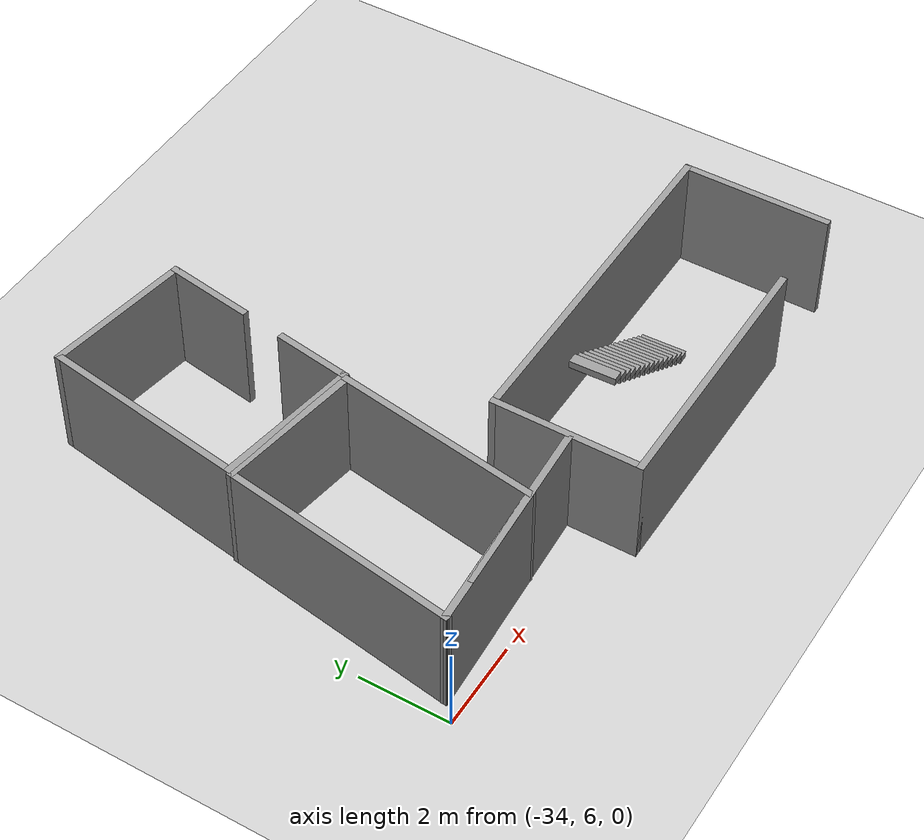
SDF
<sdf version="1.6">
 <world name="default">
  <model name="ground_plane">
   <static>1</static>
   <link name="link">
    <collision name="collision">
     <geometry><plane><normal>0 0 1</normal><size>100 100</size></plane></geometry>
     <surface>
      <contact><collide_bitmask>65535</collide_bitmask></contact>
      <friction><ode><mu>100</mu><mu2>50</mu2></ode></friction>
     </surface>
    </collision>
    <visual name="visual">
     <cast_shadows>0</cast_shadows>
     <geometry><plane><normal>0 0 1</normal><size>100 100</size></plane></geometry>
     <material>
      <script><uri>file://media/materials/scripts/gazebo.material</uri><name>Gazebo/Grey</name></script>
     </material>
    </visual>
   </link>
  </model>
  <model name="101A_2">
   <pose>-31.6597 8.67597 0 0 0 -0.150933</pose>
   <link name="Wall_21">
    <collision name="Wall_21_Collision">
     <geometry><box><size>3.40332 0.15 2.5</size></box></geometry>
     <pose>0 0 1.25 0 -0 0</pose>
    </collision>
    <visual name="Wall_21_Visual">
     <pose>0 0 1.25 0 -0 0</pose>
     <geometry><box><size>3.40332 0.15 2.5</size></box></geometry>
     <material>
      <script><uri>file://media/materials/scripts/gazebo.material</uri><name>Gazebo/Grey</name></script>
      <ambient>1 1 1 1</ambient>
     </material>
     <meta><layer>0</layer></meta>
    </visual>
    <pose>0 -2.25161 0 0 -0 0.2068</pose>
   </link>
   <link name="Wall_22">
    <collision name="Wall_22_Collision">
     <geometry><box><size>4.667 0.15 2.5</size></box></geometry>
     <pose>0 0 1.25 0 -0 0</pose>
    </collision>
    <visual name="Wall_22_Visual">
     <pose>0 0 1.25 0 -0 0</pose>
     <geometry><box><size>4.667 0.15 2.5</size></box></geometry>
     <material>
      <script><uri>file://media/materials/scripts/gazebo.material</uri><name>Gazebo/Grey</name></script>
      <ambient>1 1 1 1</ambient>
     </material>
     <meta><layer>0</layer></meta>
    </visual>
    <pose>1.592 0.340889 0 0 -0 1.5708</pose>
   </link>
   <link name="Wall_23">
    <collision name="Wall_23_Collision">
     <geometry><box><size>3.334 0.15 2.5</size></box></geometry>
     <pose>0 0 1.25 0 -0 0</pose>
    </collision>
    <visual name="Wall_23_Visual">
     <pose>0 0 1.25 0 -0 0</pose>
     <geometry><box><size>3.334 0.15 2.5</size></box></geometry>
     <material>
      <script><uri>file://media/materials/scripts/gazebo.material</uri><name>Gazebo/Grey</name></script>
      <ambient>1 1 1 1</ambient>
     </material>
     <meta><layer>0</layer></meta>
    </visual>
    <pose>0 2.59889 0 0 -0 -3.14128</pose>
   </link>
   <link name="Wall_24">
    <collision name="Wall_24_Collision">
     <geometry><box><size>5.334 0.15 2.5</size></box></geometry>
     <pose>0 0 1.25 0 -0 0</pose>
    </collision>
    <visual name="Wall_24_Visual">
     <pose>0 0 1.25 0 -0 0</pose>
     <geometry><box><size>5.334 0.15 2.5</size></box></geometry>
     <material>
      <script><uri>file://media/materials/scripts/gazebo.material</uri><name>Gazebo/Grey</name></script>
      <ambient>1 1 1 1</ambient>
     </material>
     <meta><layer>0</layer></meta>
    </visual>
    <pose>-1.592 0.006389 0 0 -0 -1.5708</pose>
   </link>
   <static>1</static>
  </model>
  <model name="Staircase_1">
   <link name="Stairs_0">
    <visual name="Stairs_0_Visual_0">
     <pose>-1.63333 -0 0.083333 0 -0 1.5708</pose>
     <geometry><box><size>1 0.233333 0.166667</size></box></geometry>
     <material>
      <script><uri>file://media/materials/scripts/gazebo.material</uri><name>Gazebo/Grey</name></script>
      <ambient>1 1 1 1</ambient>
      <shader type="pixel"/>
     </material>
     <meta><layer>0</layer></meta>
    </visual>
    <visual name="Stairs_0_Visual_2">
     <pose>-1.16667 -0 0.416667 0 -0 1.5708</pose>
     <geometry><box><size>1 0.233333 0.166667</size></box></geometry>
     <material>
      <script><uri>file://media/materials/scripts/gazebo.material</uri><name>Gazebo/Grey</name></script>
      <ambient>1 1 1 1</ambient>
      <shader type="pixel"/>
     </material>
     <meta><layer>0</layer></meta>
    </visual>
    <visual name="Stairs_0_Visual_3">
     <pose>-0.933333 -0 0.583333 0 -0 1.5708</pose>
     <geometry><box><size>1 0.233333 0.166667</size></box></geometry>
     <material>
      <script><uri>file://media/materials/scripts/gazebo.material</uri><name>Gazebo/Grey</name></script>
      <ambient>1 1 1 1</ambient>
      <shader type="pixel"/>
     </material>
     <meta><layer>0</layer></meta>
    </visual>
    <visual name="Stairs_0_Visual_4">
     <pose>-0.7 0 0.75 0 -0 1.5708</pose>
     <geometry><box><size>1 0.233333 0.166667</size></box></geometry>
     <material>
      <script><uri>file://media/materials/scripts/gazebo.material</uri><name>Gazebo/Grey</name></script>
      <ambient>1 1 1 1</ambient>
      <shader type="pixel"/>
     </material>
     <meta><layer>0</layer></meta>
    </visual>
    <visual name="Stairs_0_Visual_5">
     <pose>-0.466667 0 0.916667 0 -0 1.5708</pose>
     <geometry><box><size>1 0.233333 0.166667</size></box></geometry>
     <material>
      <script><uri>file://media/materials/scripts/gazebo.material</uri><name>Gazebo/Grey</name></script>
      <ambient>1 1 1 1</ambient>
      <shader type="pixel"/>
     </material>
     <meta><layer>0</layer></meta>
    </visual>
    <visual name="Stairs_0_Visual_6">
     <pose>-0.233333 0 1.08333 0 -0 1.5708</pose>
     <geometry><box><size>1 0.233333 0.166667</size></box></geometry>
     <material>
      <script><uri>file://media/materials/scripts/gazebo.material</uri><name>Gazebo/Grey</name></script>
      <ambient>1 1 1 1</ambient>
      <shader type="pixel"/>
     </material>
     <meta><layer>0</layer></meta>
    </visual>
    <visual name="Stairs_0_Visual_7">
     <pose>0 0 1.25 0 -0 1.5708</pose>
     <geometry><box><size>1 0.233333 0.166667</size></box></geometry>
     <material>
      <script><uri>file://media/materials/scripts/gazebo.material</uri><name>Gazebo/Grey</name></script>
      <ambient>1 1 1 1</ambient>
      <shader type="pixel"/>
     </material>
     <meta><layer>0</layer></meta>
    </visual>
    <visual name="Stairs_0_Visual_1">
     <pose>-1.4 -0 0.25 0 -0 1.5708</pose>
     <geometry><box><size>1 0.233333 0.166667</size></box></geometry>
     <material>
      <script><uri>file://media/materials/scripts/gazebo.material</uri><name>Gazebo/Grey</name></script>
      <ambient>1 1 1 1</ambient>
      <shader type="pixel"/>
     </material>
     <meta><layer>0</layer></meta>
    </visual>
    <visual name="Stairs_0_Visual_14">
     <pose>1.63333 0 2.41667 0 -0 1.5708</pose>
     <geometry><box><size>1 0.233333 0.166667</size></box></geometry>
     <material>
      <script><uri>file://media/materials/scripts/gazebo.material</uri><name>Gazebo/Grey</name></script>
      <ambient>1 1 1 1</ambient>
      <shader type="pixel"/>
     </material>
     <meta><layer>0</layer></meta>
    </visual>
    <visual name="Stairs_0_Visual_8">
     <pose>0.233333 0 1.41667 0 -0 1.5708</pose>
     <geometry><box><size>1 0.233333 0.166667</size></box></geometry>
     <material>
      <script><uri>file://media/materials/scripts/gazebo.material</uri><name>Gazebo/Grey</name></script>
      <ambient>1 1 1 1</ambient>
      <shader type="pixel"/>
     </material>
     <meta><layer>0</layer></meta>
    </visual>
    <visual name="Stairs_0_Visual_9">
     <pose>0.466667 0 1.58333 0 -0 1.5708</pose>
     <geometry><box><size>1 0.233333 0.166667</size></box></geometry>
     <material>
      <script><uri>file://media/materials/scripts/gazebo.material</uri><name>Gazebo/Grey</name></script>
      <ambient>1 1 1 1</ambient>
      <shader type="pixel"/>
     </material>
     <meta><layer>0</layer></meta>
    </visual>
    <visual name="Stairs_0_Visual_10">
     <pose>0.7 0 1.75 0 -0 1.5708</pose>
     <geometry><box><size>1 0.233333 0.166667</size></box></geometry>
     <material>
      <script><uri>file://media/materials/scripts/gazebo.material</uri><name>Gazebo/Grey</name></script>
      <ambient>1 1 1 1</ambient>
      <shader type="pixel"/>
     </material>
     <meta><layer>0</layer></meta>
    </visual>
    <visual name="Stairs_0_Visual_11">
     <pose>0.933334 0 1.91667 0 -0 1.5708</pose>
     <geometry><box><size>1 0.233333 0.166667</size></box></geometry>
     <material>
      <script><uri>file://media/materials/scripts/gazebo.material</uri><name>Gazebo/Grey</name></script>
      <ambient>1 1 1 1</ambient>
      <shader type="pixel"/>
     </material>
     <meta><layer>0</layer></meta>
    </visual>
    <visual name="Stairs_0_Visual_12">
     <pose>1.16667 0 2.08333 0 -0 1.5708</pose>
     <geometry><box><size>1 0.233333 0.166667</size></box></geometry>
     <material>
      <script><uri>file://media/materials/scripts/gazebo.material</uri><name>Gazebo/Grey</name></script>
      <ambient>1 1 1 1</ambient>
      <shader type="pixel"/>
     </material>
     <meta><layer>0</layer></meta>
    </visual>
    <visual name="Stairs_0_Visual_13">
     <pose>1.4 0 2.25 0 -0 1.5708</pose>
     <geometry><box><size>1 0.233333 0.166667</size></box></geometry>
     <material>
      <script><uri>file://media/materials/scripts/gazebo.material</uri><name>Gazebo/Grey</name></script>
      <ambient>1 1 1 1</ambient>
      <shader type="pixel"/>
     </material>
     <meta><layer>0</layer></meta>
    </visual>
    <collision name="Stairs_0_Collision_6">
     <pose>-0.233333 0 1.08333 0 -0 1.5708</pose>
     <geometry><box><size>1 0.233333 0.166667</size></box></geometry>
     <surface>
      <friction>
       <ode><mu>1</mu><mu2>1</mu2><fdir1>0 0 0</fdir1><slip1>0</slip1><slip2>0</slip2></ode>
       <torsional>
        <coefficient>1</coefficient>
        <patch_radius>0</patch_radius>
        <surface_radius>0</surface_radius>
        <use_patch_radius>1</use_patch_radius>
        <ode><slip>0</slip></ode>
       </torsional>
      </friction>
      <bounce><restitution_coefficient>0</restitution_coefficient><threshold>1e+06</threshold></bounce>
      <contact>
       <collide_without_contact>0</collide_without_contact>
       <collide_without_contact_bitmask>1</collide_without_contact_bitmask>
       <collide_bitmask>1</collide_bitmask>
       <ode>
        <soft_cfm>0</soft_cfm>
        <soft_erp>0.2</soft_erp>
        <kp>1e+13</kp>
        <kd>1</kd>
        <max_vel>0.01</max_vel>
        <min_depth>0</min_depth>
       </ode>
       <bullet>
        <split_impulse>1</split_impulse>
        <split_impulse_penetration_threshold>-0.01</split_impulse_penetration_threshold>
        <soft_cfm>0</soft_cfm>
        <soft_erp>0.2</soft_erp>
        <kp>1e+13</kp>
        <kd>1</kd>
       </bullet>
      </contact>
     </surface>
    </collision>
    <collision name="Stairs_0_Collision_7">
     <pose>0 0 1.25 0 -0 1.5708</pose>
     <geometry><box><size>1 0.233333 0.166667</size></box></geometry>
     <surface>
      <friction>
       <ode><mu>1</mu><mu2>1</mu2><fdir1>0 0 0</fdir1><slip1>0</slip1><slip2>0</slip2></ode>
       <torsional>
        <coefficient>1</coefficient>
        <patch_radius>0</patch_radius>
        <surface_radius>0</surface_radius>
        <use_patch_radius>1</use_patch_radius>
        <ode><slip>0</slip></ode>
       </torsional>
      </friction>
      <bounce><restitution_coefficient>0</restitution_coefficient><threshold>1e+06</threshold></bounce>
      <contact>
       <collide_without_contact>0</collide_without_contact>
       <collide_without_contact_bitmask>1</collide_without_contact_bitmask>
       <collide_bitmask>1</collide_bitmask>
       <ode>
        <soft_cfm>0</soft_cfm>
        <soft_erp>0.2</soft_erp>
        <kp>1e+13</kp>
        <kd>1</kd>
        <max_vel>0.01</max_vel>
        <min_depth>0</min_depth>
       </ode>
       <bullet>
        <split_impulse>1</split_impulse>
        <split_impulse_penetration_threshold>-0.01</split_impulse_penetration_threshold>
        <soft_cfm>0</soft_cfm>
        <soft_erp>0.2</soft_erp>
        <kp>1e+13</kp>
        <kd>1</kd>
       </bullet>
      </contact>
     </surface>
    </collision>
    <collision name="Stairs_0_Collision_8">
     <pose>0.233333 0 1.41667 0 -0 1.5708</pose>
     <geometry><box><size>1 0.233333 0.166667</size></box></geometry>
     <surface>
      <friction>
       <ode><mu>1</mu><mu2>1</mu2><fdir1>0 0 0</fdir1><slip1>0</slip1><slip2>0</slip2></ode>
       <torsional>
        <coefficient>1</coefficient>
        <patch_radius>0</patch_radius>
        <surface_radius>0</surface_radius>
        <use_patch_radius>1</use_patch_radius>
        <ode><slip>0</slip></ode>
       </torsional>
      </friction>
      <bounce><restitution_coefficient>0</restitution_coefficient><threshold>1e+06</threshold></bounce>
      <contact>
       <collide_without_contact>0</collide_without_contact>
       <collide_without_contact_bitmask>1</collide_without_contact_bitmask>
       <collide_bitmask>1</collide_bitmask>
       <ode>
        <soft_cfm>0</soft_cfm>
        <soft_erp>0.2</soft_erp>
        <kp>1e+13</kp>
        <kd>1</kd>
        <max_vel>0.01</max_vel>
        <min_depth>0</min_depth>
       </ode>
       <bullet>
        <split_impulse>1</split_impulse>
        <split_impulse_penetration_threshold>-0.01</split_impulse_penetration_threshold>
        <soft_cfm>0</soft_cfm>
        <soft_erp>0.2</soft_erp>
        <kp>1e+13</kp>
        <kd>1</kd>
       </bullet>
      </contact>
     </surface>
    </collision>
    <collision name="Stairs_0_Collision_9">
     <pose>0.466667 0 1.58333 0 -0 1.5708</pose>
     <geometry><box><size>1 0.233333 0.166667</size></box></geometry>
     <surface>
      <friction>
       <ode><mu>1</mu><mu2>1</mu2><fdir1>0 0 0</fdir1><slip1>0</slip1><slip2>0</slip2></ode>
       <torsional>
        <coefficient>1</coefficient>
        <patch_radius>0</patch_radius>
        <surface_radius>0</surface_radius>
        <use_patch_radius>1</use_patch_radius>
        <ode><slip>0</slip></ode>
       </torsional>
      </friction>
      <bounce><restitution_coefficient>0</restitution_coefficient><threshold>1e+06</threshold></bounce>
      <contact>
       <collide_without_contact>0</collide_without_contact>
       <collide_without_contact_bitmask>1</collide_without_contact_bitmask>
       <collide_bitmask>1</collide_bitmask>
       <ode>
        <soft_cfm>0</soft_cfm>
        <soft_erp>0.2</soft_erp>
        <kp>1e+13</kp>
        <kd>1</kd>
        <max_vel>0.01</max_vel>
        <min_depth>0</min_depth>
       </ode>
       <bullet>
        <split_impulse>1</split_impulse>
        <split_impulse_penetration_threshold>-0.01</split_impulse_penetration_threshold>
        <soft_cfm>0</soft_cfm>
        <soft_erp>0.2</soft_erp>
        <kp>1e+13</kp>
        <kd>1</kd>
       </bullet>
      </contact>
     </surface>
    </collision>
    <collision name="Stairs_0_Collision_10">
     <pose>0.7 0 1.75 0 -0 1.5708</pose>
     <geometry><box><size>1 0.233333 0.166667</size></box></geometry>
     <surface>
      <friction>
       <ode><mu>1</mu><mu2>1</mu2><fdir1>0 0 0</fdir1><slip1>0</slip1><slip2>0</slip2></ode>
       <torsional>
        <coefficient>1</coefficient>
        <patch_radius>0</patch_radius>
        <surface_radius>0</surface_radius>
        <use_patch_radius>1</use_patch_radius>
        <ode><slip>0</slip></ode>
       </torsional>
      </friction>
      <bounce><restitution_coefficient>0</restitution_coefficient><threshold>1e+06</threshold></bounce>
      <contact>
       <collide_without_contact>0</collide_without_contact>
       <collide_without_contact_bitmask>1</collide_without_contact_bitmask>
       <collide_bitmask>1</collide_bitmask>
       <ode>
        <soft_cfm>0</soft_cfm>
        <soft_erp>0.2</soft_erp>
        <kp>1e+13</kp>
        <kd>1</kd>
        <max_vel>0.01</max_vel>
        <min_depth>0</min_depth>
       </ode>
       <bullet>
        <split_impulse>1</split_impulse>
        <split_impulse_penetration_threshold>-0.01</split_impulse_penetration_threshold>
        <soft_cfm>0</soft_cfm>
        <soft_erp>0.2</soft_erp>
        <kp>1e+13</kp>
        <kd>1</kd>
       </bullet>
      </contact>
     </surface>
    </collision>
    <collision name="Stairs_0_Collision_11">
     <pose>0.933334 0 1.91667 0 -0 1.5708</pose>
     <geometry><box><size>1 0.233333 0.166667</size></box></geometry>
     <surface>
      <friction>
       <ode><mu>1</mu><mu2>1</mu2><fdir1>0 0 0</fdir1><slip1>0</slip1><slip2>0</slip2></ode>
       <torsional>
        <coefficient>1</coefficient>
        <patch_radius>0</patch_radius>
        <surface_radius>0</surface_radius>
        <use_patch_radius>1</use_patch_radius>
        <ode><slip>0</slip></ode>
       </torsional>
      </friction>
      <bounce><restitution_coefficient>0</restitution_coefficient><threshold>1e+06</threshold></bounce>
      <contact>
       <collide_without_contact>0</collide_without_contact>
       <collide_without_contact_bitmask>1</collide_without_contact_bitmask>
       <collide_bitmask>1</collide_bitmask>
       <ode>
        <soft_cfm>0</soft_cfm>
        <soft_erp>0.2</soft_erp>
        <kp>1e+13</kp>
        <kd>1</kd>
        <max_vel>0.01</max_vel>
        <min_depth>0</min_depth>
       </ode>
       <bullet>
        <split_impulse>1</split_impulse>
        <split_impulse_penetration_threshold>-0.01</split_impulse_penetration_threshold>
        <soft_cfm>0</soft_cfm>
        <soft_erp>0.2</soft_erp>
        <kp>1e+13</kp>
        <kd>1</kd>
       </bullet>
      </contact>
     </surface>
    </collision>
    <collision name="Stairs_0_Collision_12">
     <pose>1.16667 0 2.08333 0 -0 1.5708</pose>
     <geometry><box><size>1 0.233333 0.166667</size></box></geometry>
     <surface>
      <friction>
       <ode><mu>1</mu><mu2>1</mu2><fdir1>0 0 0</fdir1><slip1>0</slip1><slip2>0</slip2></ode>
       <torsional>
        <coefficient>1</coefficient>
        <patch_radius>0</patch_radius>
        <surface_radius>0</surface_radius>
        <use_patch_radius>1</use_patch_radius>
        <ode><slip>0</slip></ode>
       </torsional>
      </friction>
      <bounce><restitution_coefficient>0</restitution_coefficient><threshold>1e+06</threshold></bounce>
      <contact>
       <collide_without_contact>0</collide_without_contact>
       <collide_without_contact_bitmask>1</collide_without_contact_bitmask>
       <collide_bitmask>1</collide_bitmask>
       <ode>
        <soft_cfm>0</soft_cfm>
        <soft_erp>0.2</soft_erp>
        <kp>1e+13</kp>
        <kd>1</kd>
        <max_vel>0.01</max_vel>
        <min_depth>0</min_depth>
       </ode>
       <bullet>
        <split_impulse>1</split_impulse>
        <split_impulse_penetration_threshold>-0.01</split_impulse_penetration_threshold>
        <soft_cfm>0</soft_cfm>
        <soft_erp>0.2</soft_erp>
        <kp>1e+13</kp>
        <kd>1</kd>
       </bullet>
      </contact>
     </surface>
    </collision>
    <collision name="Stairs_0_Collision_0">
     <pose>-1.63333 0 0.083333 0 -0 1.5708</pose>
     <geometry><box><size>1 0.233333 0.166667</size></box></geometry>
     <surface>
      <friction>
       <ode><mu>1</mu><mu2>1</mu2><fdir1>0 0 0</fdir1><slip1>0</slip1><slip2>0</slip2></ode>
       <torsional>
        <coefficient>1</coefficient>
        <patch_radius>0</patch_radius>
        <surface_radius>0</surface_radius>
        <use_patch_radius>1</use_patch_radius>
        <ode><slip>0</slip></ode>
       </torsional>
      </friction>
      <bounce><restitution_coefficient>0</restitution_coefficient><threshold>1e+06</threshold></bounce>
      <contact>
       <collide_without_contact>0</collide_without_contact>
       <collide_without_contact_bitmask>1</collide_without_contact_bitmask>
       <collide_bitmask>1</collide_bitmask>
       <ode>
        <soft_cfm>0</soft_cfm>
        <soft_erp>0.2</soft_erp>
        <kp>1e+13</kp>
        <kd>1</kd>
        <max_vel>0.01</max_vel>
        <min_depth>0</min_depth>
       </ode>
       <bullet>
        <split_impulse>1</split_impulse>
        <split_impulse_penetration_threshold>-0.01</split_impulse_penetration_threshold>
        <soft_cfm>0</soft_cfm>
        <soft_erp>0.2</soft_erp>
        <kp>1e+13</kp>
        <kd>1</kd>
       </bullet>
      </contact>
     </surface>
    </collision>
    <collision name="Stairs_0_Collision_1">
     <pose>-1.4 0 0.25 0 -0 1.5708</pose>
     <geometry><box><size>1 0.233333 0.166667</size></box></geometry>
     <surface>
      <friction>
       <ode><mu>1</mu><mu2>1</mu2><fdir1>0 0 0</fdir1><slip1>0</slip1><slip2>0</slip2></ode>
       <torsional>
        <coefficient>1</coefficient>
        <patch_radius>0</patch_radius>
        <surface_radius>0</surface_radius>
        <use_patch_radius>1</use_patch_radius>
        <ode><slip>0</slip></ode>
       </torsional>
      </friction>
      <bounce><restitution_coefficient>0</restitution_coefficient><threshold>1e+06</threshold></bounce>
      <contact>
       <collide_without_contact>0</collide_without_contact>
       <collide_without_contact_bitmask>1</collide_without_contact_bitmask>
       <collide_bitmask>1</collide_bitmask>
       <ode>
        <soft_cfm>0</soft_cfm>
        <soft_erp>0.2</soft_erp>
        <kp>1e+13</kp>
        <kd>1</kd>
        <max_vel>0.01</max_vel>
        <min_depth>0</min_depth>
       </ode>
       <bullet>
        <split_impulse>1</split_impulse>
        <split_impulse_penetration_threshold>-0.01</split_impulse_penetration_threshold>
        <soft_cfm>0</soft_cfm>
        <soft_erp>0.2</soft_erp>
        <kp>1e+13</kp>
        <kd>1</kd>
       </bullet>
      </contact>
     </surface>
    </collision>
    <collision name="Stairs_0_Collision_2">
     <pose>-1.16667 0 0.416667 0 -0 1.5708</pose>
     <geometry><box><size>1 0.233333 0.166667</size></box></geometry>
     <surface>
      <friction>
       <ode><mu>1</mu><mu2>1</mu2><fdir1>0 0 0</fdir1><slip1>0</slip1><slip2>0</slip2></ode>
       <torsional>
        <coefficient>1</coefficient>
        <patch_radius>0</patch_radius>
        <surface_radius>0</surface_radius>
        <use_patch_radius>1</use_patch_radius>
        <ode><slip>0</slip></ode>
       </torsional>
      </friction>
      <bounce><restitution_coefficient>0</restitution_coefficient><threshold>1e+06</threshold></bounce>
      <contact>
       <collide_without_contact>0</collide_without_contact>
       <collide_without_contact_bitmask>1</collide_without_contact_bitmask>
       <collide_bitmask>1</collide_bitmask>
       <ode>
        <soft_cfm>0</soft_cfm>
        <soft_erp>0.2</soft_erp>
        <kp>1e+13</kp>
        <kd>1</kd>
        <max_vel>0.01</max_vel>
        <min_depth>0</min_depth>
       </ode>
       <bullet>
        <split_impulse>1</split_impulse>
        <split_impulse_penetration_threshold>-0.01</split_impulse_penetration_threshold>
        <soft_cfm>0</soft_cfm>
        <soft_erp>0.2</soft_erp>
        <kp>1e+13</kp>
        <kd>1</kd>
       </bullet>
      </contact>
     </surface>
    </collision>
    <collision name="Stairs_0_Collision_3">
     <pose>-0.933333 0 0.583333 0 -0 1.5708</pose>
     <geometry><box><size>1 0.233333 0.166667</size></box></geometry>
     <surface>
      <friction>
       <ode><mu>1</mu><mu2>1</mu2><fdir1>0 0 0</fdir1><slip1>0</slip1><slip2>0</slip2></ode>
       <torsional>
        <coefficient>1</coefficient>
        <patch_radius>0</patch_radius>
        <surface_radius>0</surface_radius>
        <use_patch_radius>1</use_patch_radius>
        <ode><slip>0</slip></ode>
       </torsional>
      </friction>
      <bounce><restitution_coefficient>0</restitution_coefficient><threshold>1e+06</threshold></bounce>
      <contact>
       <collide_without_contact>0</collide_without_contact>
       <collide_without_contact_bitmask>1</collide_without_contact_bitmask>
       <collide_bitmask>1</collide_bitmask>
       <ode>
        <soft_cfm>0</soft_cfm>
        <soft_erp>0.2</soft_erp>
        <kp>1e+13</kp>
        <kd>1</kd>
        <max_vel>0.01</max_vel>
        <min_depth>0</min_depth>
       </ode>
       <bullet>
        <split_impulse>1</split_impulse>
        <split_impulse_penetration_threshold>-0.01</split_impulse_penetration_threshold>
        <soft_cfm>0</soft_cfm>
        <soft_erp>0.2</soft_erp>
        <kp>1e+13</kp>
        <kd>1</kd>
       </bullet>
      </contact>
     </surface>
    </collision>
    <collision name="Stairs_0_Collision_4">
     <pose>-0.7 0 0.75 0 -0 1.5708</pose>
     <geometry><box><size>1 0.233333 0.166667</size></box></geometry>
     <surface>
      <friction>
       <ode><mu>1</mu><mu2>1</mu2><fdir1>0 0 0</fdir1><slip1>0</slip1><slip2>0</slip2></ode>
       <torsional>
        <coefficient>1</coefficient>
        <patch_radius>0</patch_radius>
        <surface_radius>0</surface_radius>
        <use_patch_radius>1</use_patch_radius>
        <ode><slip>0</slip></ode>
       </torsional>
      </friction>
      <bounce><restitution_coefficient>0</restitution_coefficient><threshold>1e+06</threshold></bounce>
      <contact>
       <collide_without_contact>0</collide_without_contact>
       <collide_without_contact_bitmask>1</collide_without_contact_bitmask>
       <collide_bitmask>1</collide_bitmask>
       <ode>
        <soft_cfm>0</soft_cfm>
        <soft_erp>0.2</soft_erp>
        <kp>1e+13</kp>
        <kd>1</kd>
        <max_vel>0.01</max_vel>
        <min_depth>0</min_depth>
       </ode>
       <bullet>
        <split_impulse>1</split_impulse>
        <split_impulse_penetration_threshold>-0.01</split_impulse_penetration_threshold>
        <soft_cfm>0</soft_cfm>
        <soft_erp>0.2</soft_erp>
        <kp>1e+13</kp>
        <kd>1</kd>
       </bullet>
      </contact>
     </surface>
    </collision>
    <collision name="Stairs_0_Collision_5">
     <pose>-0.466667 0 0.916667 0 -0 1.5708</pose>
     <geometry><box><size>1 0.233333 0.166667</size></box></geometry>
     <surface>
      <friction>
       <ode><mu>1</mu><mu2>1</mu2><fdir1>0 0 0</fdir1><slip1>0</slip1><slip2>0</slip2></ode>
       <torsional>
        <coefficient>1</coefficient>
        <patch_radius>0</patch_radius>
        <surface_radius>0</surface_radius>
        <use_patch_radius>1</use_patch_radius>
        <ode><slip>0</slip></ode>
       </torsional>
      </friction>
      <bounce><restitution_coefficient>0</restitution_coefficient><threshold>1e+06</threshold></bounce>
      <contact>
       <collide_without_contact>0</collide_without_contact>
       <collide_without_contact_bitmask>1</collide_without_contact_bitmask>
       <collide_bitmask>1</collide_bitmask>
       <ode>
        <soft_cfm>0</soft_cfm>
        <soft_erp>0.2</soft_erp>
        <kp>1e+13</kp>
        <kd>1</kd>
        <max_vel>0.01</max_vel>
        <min_depth>0</min_depth>
       </ode>
       <bullet>
        <split_impulse>1</split_impulse>
        <split_impulse_penetration_threshold>-0.01</split_impulse_penetration_threshold>
        <soft_cfm>0</soft_cfm>
        <soft_erp>0.2</soft_erp>
        <kp>1e+13</kp>
        <kd>1</kd>
       </bullet>
      </contact>
     </surface>
    </collision>
    <collision name="Stairs_0_Collision_13">
     <pose>1.4 0 2.25 0 -0 1.5708</pose>
     <geometry><box><size>1 0.233333 0.166667</size></box></geometry>
     <surface>
      <friction>
       <ode><mu>1</mu><mu2>1</mu2><fdir1>0 0 0</fdir1><slip1>0</slip1><slip2>0</slip2></ode>
       <torsional>
        <coefficient>1</coefficient>
        <patch_radius>0</patch_radius>
        <surface_radius>0</surface_radius>
        <use_patch_radius>1</use_patch_radius>
        <ode><slip>0</slip></ode>
       </torsional>
      </friction>
      <bounce><restitution_coefficient>0</restitution_coefficient><threshold>1e+06</threshold></bounce>
      <contact>
       <collide_without_contact>0</collide_without_contact>
       <collide_without_contact_bitmask>1</collide_without_contact_bitmask>
       <collide_bitmask>1</collide_bitmask>
       <ode>
        <soft_cfm>0</soft_cfm>
        <soft_erp>0.2</soft_erp>
        <kp>1e+13</kp>
        <kd>1</kd>
        <max_vel>0.01</max_vel>
        <min_depth>0</min_depth>
       </ode>
       <bullet>
        <split_impulse>1</split_impulse>
        <split_impulse_penetration_threshold>-0.01</split_impulse_penetration_threshold>
        <soft_cfm>0</soft_cfm>
        <soft_erp>0.2</soft_erp>
        <kp>1e+13</kp>
        <kd>1</kd>
       </bullet>
      </contact>
     </surface>
    </collision>
    <collision name="Stairs_0_Collision_14">
     <pose>1.63333 0 2.41667 0 -0 1.5708</pose>
     <geometry><box><size>1 0.233333 0.166667</size></box></geometry>
     <surface>
      <friction>
       <ode><mu>1</mu><mu2>1</mu2><fdir1>0 0 0</fdir1><slip1>0</slip1><slip2>0</slip2></ode>
       <torsional>
        <coefficient>1</coefficient>
        <patch_radius>0</patch_radius>
        <surface_radius>0</surface_radius>
        <use_patch_radius>1</use_patch_radius>
        <ode><slip>0</slip></ode>
       </torsional>
      </friction>
      <bounce><restitution_coefficient>0</restitution_coefficient><threshold>1e+06</threshold></bounce>
      <contact>
       <collide_without_contact>0</collide_without_contact>
       <collide_without_contact_bitmask>1</collide_without_contact_bitmask>
       <collide_bitmask>1</collide_bitmask>
       <ode>
        <soft_cfm>0</soft_cfm>
        <soft_erp>0.2</soft_erp>
        <kp>1e+13</kp>
        <kd>1</kd>
        <max_vel>0.01</max_vel>
        <min_depth>0</min_depth>
       </ode>
       <bullet>
        <split_impulse>1</split_impulse>
        <split_impulse_penetration_threshold>-0.01</split_impulse_penetration_threshold>
        <soft_cfm>0</soft_cfm>
        <soft_erp>0.2</soft_erp>
        <kp>1e+13</kp>
        <kd>1</kd>
       </bullet>
      </contact>
     </surface>
    </collision>
   </link>
   <static>1</static>
   <pose>-25.2901 7.17612 0 0 0 -3.10259</pose>
  </model>
  <model name="197A">
   <link name="Wall_33">
    <pose>3.925 0 0 0 -0 1.5708</pose>
    <visual name="Wall_33_Visual">
     <pose>0 0 1.25 0 -0 0</pose>
     <geometry><box><size>3.336 0.15 2.5</size></box></geometry>
     <material>
      <script><uri>file://media/materials/scripts/gazebo.material</uri><name>Gazebo/Grey</name></script>
      <ambient>1 1 1 1</ambient>
      <shader type="pixel"/>
     </material>
     <meta><layer>0</layer></meta>
    </visual>
    <collision name="Wall_33_Collision">
     <pose>0 0 1.25 0 -0 0</pose>
     <geometry><box><size>3.336 0.15 2.5</size></box></geometry>
     <surface>
      <friction>
       <ode><mu>1</mu><mu2>1</mu2><fdir1>0 0 0</fdir1><slip1>0</slip1><slip2>0</slip2></ode>
       <torsional>
        <coefficient>1</coefficient>
        <patch_radius>0</patch_radius>
        <surface_radius>0</surface_radius>
        <use_patch_radius>1</use_patch_radius>
        <ode><slip>0</slip></ode>
       </torsional>
      </friction>
      <bounce><restitution_coefficient>0</restitution_coefficient><threshold>1e+06</threshold></bounce>
      <contact>
       <collide_without_contact>0</collide_without_contact>
       <collide_without_contact_bitmask>1</collide_without_contact_bitmask>
       <collide_bitmask>1</collide_bitmask>
       <ode>
        <soft_cfm>0</soft_cfm>
        <soft_erp>0.2</soft_erp>
        <kp>1e+13</kp>
        <kd>1</kd>
        <max_vel>0.01</max_vel>
        <min_depth>0</min_depth>
       </ode>
       <bullet>
        <split_impulse>1</split_impulse>
        <split_impulse_penetration_threshold>-0.01</split_impulse_penetration_threshold>
        <soft_cfm>0</soft_cfm>
        <soft_erp>0.2</soft_erp>
        <kp>1e+13</kp>
        <kd>1</kd>
       </bullet>
      </contact>
     </surface>
    </collision>
   </link>
   <link name="Wall_34">
    <pose>0 1.593 0 0 -0 3.14159</pose>
    <visual name="Wall_34_Visual">
     <pose>0 0 1.25 0 -0 0</pose>
     <geometry><box><size>8 0.15 2.5</size></box></geometry>
     <material>
      <script><uri>file://media/materials/scripts/gazebo.material</uri><name>Gazebo/Grey</name></script>
      <ambient>1 1 1 1</ambient>
      <shader type="pixel"/>
     </material>
     <meta><layer>0</layer></meta>
    </visual>
    <collision name="Wall_34_Collision">
     <pose>0 0 1.25 0 -0 0</pose>
     <geometry><box><size>8 0.15 2.5</size></box></geometry>
     <surface>
      <friction>
       <ode><mu>1</mu><mu2>1</mu2><fdir1>0 0 0</fdir1><slip1>0</slip1><slip2>0</slip2></ode>
       <torsional>
        <coefficient>1</coefficient>
        <patch_radius>0</patch_radius>
        <surface_radius>0</surface_radius>
        <use_patch_radius>1</use_patch_radius>
        <ode><slip>0</slip></ode>
       </torsional>
      </friction>
      <bounce><restitution_coefficient>0</restitution_coefficient><threshold>1e+06</threshold></bounce>
      <contact>
       <collide_without_contact>0</collide_without_contact>
       <collide_without_contact_bitmask>1</collide_without_contact_bitmask>
       <collide_bitmask>1</collide_bitmask>
       <ode>
        <soft_cfm>0</soft_cfm>
        <soft_erp>0.2</soft_erp>
        <kp>1e+13</kp>
        <kd>1</kd>
        <max_vel>0.01</max_vel>
        <min_depth>0</min_depth>
       </ode>
       <bullet>
        <split_impulse>1</split_impulse>
        <split_impulse_penetration_threshold>-0.01</split_impulse_penetration_threshold>
        <soft_cfm>0</soft_cfm>
        <soft_erp>0.2</soft_erp>
        <kp>1e+13</kp>
        <kd>1</kd>
       </bullet>
      </contact>
     </surface>
    </collision>
   </link>
   <link name="Wall_35">
    <pose>-3.925 0 0 0 0 -1.5708</pose>
    <visual name="Wall_35_Visual">
     <pose>0 0 1.25 0 -0 0</pose>
     <geometry><box><size>3.336 0.15 2.5</size></box></geometry>
     <material>
      <script><uri>file://media/materials/scripts/gazebo.material</uri><name>Gazebo/Grey</name></script>
      <ambient>1 1 1 1</ambient>
      <shader type="pixel"/>
     </material>
     <meta><layer>0</layer></meta>
    </visual>
    <collision name="Wall_35_Collision">
     <pose>0 0 1.25 0 -0 0</pose>
     <geometry><box><size>3.336 0.15 2.5</size></box></geometry>
     <surface>
      <friction>
       <ode><mu>1</mu><mu2>1</mu2><fdir1>0 0 0</fdir1><slip1>0</slip1><slip2>0</slip2></ode>
       <torsional>
        <coefficient>1</coefficient>
        <patch_radius>0</patch_radius>
        <surface_radius>0</surface_radius>
        <use_patch_radius>1</use_patch_radius>
        <ode><slip>0</slip></ode>
       </torsional>
      </friction>
      <bounce><restitution_coefficient>0</restitution_coefficient><threshold>1e+06</threshold></bounce>
      <contact>
       <collide_without_contact>0</collide_without_contact>
       <collide_without_contact_bitmask>1</collide_without_contact_bitmask>
       <collide_bitmask>1</collide_bitmask>
       <ode>
        <soft_cfm>0</soft_cfm>
        <soft_erp>0.2</soft_erp>
        <kp>1e+13</kp>
        <kd>1</kd>
        <max_vel>0.01</max_vel>
        <min_depth>0</min_depth>
       </ode>
       <bullet>
        <split_impulse>1</split_impulse>
        <split_impulse_penetration_threshold>-0.01</split_impulse_penetration_threshold>
        <soft_cfm>0</soft_cfm>
        <soft_erp>0.2</soft_erp>
        <kp>1e+13</kp>
        <kd>1</kd>
       </bullet>
      </contact>
     </surface>
    </collision>
   </link>
   <link name="Wall_37">
    <pose>-1 -1.593 0 0 -0 0</pose>
    <visual name="Wall_37_Visual">
     <pose>0 0 1.25 0 -0 0</pose>
     <geometry><box><size>6 0.15 2.5</size></box></geometry>
     <material>
      <script><uri>file://media/materials/scripts/gazebo.material</uri><name>Gazebo/Grey</name></script>
      <ambient>1 1 1 1</ambient>
      <shader type="pixel"/>
     </material>
     <meta><layer>0</layer></meta>
    </visual>
    <collision name="Wall_37_Collision">
     <pose>0 0 1.25 0 -0 0</pose>
     <geometry><box><size>6 0.15 2.5</size></box></geometry>
     <surface>
      <friction>
       <ode><mu>1</mu><mu2>1</mu2><fdir1>0 0 0</fdir1><slip1>0</slip1><slip2>0</slip2></ode>
       <torsional>
        <coefficient>1</coefficient>
        <patch_radius>0</patch_radius>
        <surface_radius>0</surface_radius>
        <use_patch_radius>1</use_patch_radius>
        <ode><slip>0</slip></ode>
       </torsional>
      </friction>
      <bounce><restitution_coefficient>0</restitution_coefficient><threshold>1e+06</threshold></bounce>
      <contact>
       <collide_without_contact>0</collide_without_contact>
       <collide_without_contact_bitmask>1</collide_without_contact_bitmask>
       <collide_bitmask>1</collide_bitmask>
       <ode>
        <soft_cfm>0</soft_cfm>
        <soft_erp>0.2</soft_erp>
        <kp>1e+13</kp>
        <kd>1</kd>
        <max_vel>0.01</max_vel>
        <min_depth>0</min_depth>
       </ode>
       <bullet>
        <split_impulse>1</split_impulse>
        <split_impulse_penetration_threshold>-0.01</split_impulse_penetration_threshold>
        <soft_cfm>0</soft_cfm>
        <soft_erp>0.2</soft_erp>
        <kp>1e+13</kp>
        <kd>1</kd>
       </bullet>
      </contact>
     </surface>
    </collision>
   </link>
   <static>1</static>
   <pose>-24.7859 6.71189 0 0 -0 0</pose>
  </model>
  <model name="101Room1_3">
   <link name="Wall_61">
    <pose>0 -2.2585 0 0 -0 0</pose>
    <visual name="Wall_61_Visual">
     <pose>0 0 1.25 0 -0 0</pose>
     <geometry><box><size>3.334 0.15 2.5</size></box></geometry>
     <material>
      <script><uri>file://media/materials/scripts/gazebo.material</uri><name>Gazebo/Grey</name></script>
      <ambient>1 1 1 1</ambient>
      <shader type="pixel"/>
     </material>
     <meta><layer>0</layer></meta>
    </visual>
    <collision name="Wall_61_Collision">
     <pose>0 0 1.25 0 -0 0</pose>
     <geometry><box><size>3.334 0.15 2.5</size></box></geometry>
     <surface>
      <friction>
       <ode><mu>1</mu><mu2>1</mu2><fdir1>0 0 0</fdir1><slip1>0</slip1><slip2>0</slip2></ode>
       <torsional>
        <coefficient>1</coefficient>
        <patch_radius>0</patch_radius>
        <surface_radius>0</surface_radius>
        <use_patch_radius>1</use_patch_radius>
        <ode><slip>0</slip></ode>
       </torsional>
      </friction>
      <bounce><restitution_coefficient>0</restitution_coefficient><threshold>1e+06</threshold></bounce>
      <contact>
       <collide_without_contact>0</collide_without_contact>
       <collide_without_contact_bitmask>1</collide_without_contact_bitmask>
       <collide_bitmask>1</collide_bitmask>
       <ode>
        <soft_cfm>0</soft_cfm>
        <soft_erp>0.2</soft_erp>
        <kp>1e+13</kp>
        <kd>1</kd>
        <max_vel>0.01</max_vel>
        <min_depth>0</min_depth>
       </ode>
       <bullet>
        <split_impulse>1</split_impulse>
        <split_impulse_penetration_threshold>-0.01</split_impulse_penetration_threshold>
        <soft_cfm>0</soft_cfm>
        <soft_erp>0.2</soft_erp>
        <kp>1e+13</kp>
        <kd>1</kd>
       </bullet>
      </contact>
     </surface>
    </collision>
   </link>
   <link name="Wall_63">
    <pose>-0 2.2585 0 0 -0 3.14159</pose>
    <visual name="Wall_63_Visual">
     <pose>0 0 1.25 0 -0 0</pose>
     <geometry><box><size>3.334 0.15 2.5</size></box></geometry>
     <material>
      <script><uri>file://media/materials/scripts/gazebo.material</uri><name>Gazebo/Grey</name></script>
      <ambient>1 1 1 1</ambient>
      <shader type="pixel"/>
     </material>
     <meta><layer>0</layer></meta>
    </visual>
    <collision name="Wall_63_Collision">
     <pose>0 0 1.25 0 -0 0</pose>
     <geometry><box><size>3.334 0.15 2.5</size></box></geometry>
     <surface>
      <friction>
       <ode><mu>1</mu><mu2>1</mu2><fdir1>0 0 0</fdir1><slip1>0</slip1><slip2>0</slip2></ode>
       <torsional>
        <coefficient>1</coefficient>
        <patch_radius>0</patch_radius>
        <surface_radius>0</surface_radius>
        <use_patch_radius>1</use_patch_radius>
        <ode><slip>0</slip></ode>
       </torsional>
      </friction>
      <bounce><restitution_coefficient>0</restitution_coefficient><threshold>1e+06</threshold></bounce>
      <contact>
       <collide_without_contact>0</collide_without_contact>
       <collide_without_contact_bitmask>1</collide_without_contact_bitmask>
       <collide_bitmask>1</collide_bitmask>
       <ode>
        <soft_cfm>0</soft_cfm>
        <soft_erp>0.2</soft_erp>
        <kp>1e+13</kp>
        <kd>1</kd>
        <max_vel>0.01</max_vel>
        <min_depth>0</min_depth>
       </ode>
       <bullet>
        <split_impulse>1</split_impulse>
        <split_impulse_penetration_threshold>-0.01</split_impulse_penetration_threshold>
        <soft_cfm>0</soft_cfm>
        <soft_erp>0.2</soft_erp>
        <kp>1e+13</kp>
        <kd>1</kd>
       </bullet>
      </contact>
     </surface>
    </collision>
   </link>
   <link name="Wall_64">
    <pose>-1.592 -0 0 0 0 -1.5708</pose>
    <visual name="Wall_64_Visual">
     <pose>0 0 1.25 0 -0 0</pose>
     <geometry><box><size>4.66778 0.15 2.5</size></box></geometry>
     <material>
      <script><uri>file://media/materials/scripts/gazebo.material</uri><name>Gazebo/Grey</name></script>
      <ambient>1 1 1 1</ambient>
      <shader type="pixel"/>
     </material>
     <meta><layer>0</layer></meta>
    </visual>
    <collision name="Wall_64_Collision">
     <pose>0 0 1.25 0 -0 0</pose>
     <geometry><box><size>4.66778 0.15 2.5</size></box></geometry>
     <surface>
      <friction>
       <ode><mu>1</mu><mu2>1</mu2><fdir1>0 0 0</fdir1><slip1>0</slip1><slip2>0</slip2></ode>
       <torsional>
        <coefficient>1</coefficient>
        <patch_radius>0</patch_radius>
        <surface_radius>0</surface_radius>
        <use_patch_radius>1</use_patch_radius>
        <ode><slip>0</slip></ode>
       </torsional>
      </friction>
      <bounce><restitution_coefficient>0</restitution_coefficient><threshold>1e+06</threshold></bounce>
      <contact>
       <collide_without_contact>0</collide_without_contact>
       <collide_without_contact_bitmask>1</collide_without_contact_bitmask>
       <collide_bitmask>1</collide_bitmask>
       <ode>
        <soft_cfm>0</soft_cfm>
        <soft_erp>0.2</soft_erp>
        <kp>1e+13</kp>
        <kd>1</kd>
        <max_vel>0.01</max_vel>
        <min_depth>0</min_depth>
       </ode>
       <bullet>
        <split_impulse>1</split_impulse>
        <split_impulse_penetration_threshold>-0.01</split_impulse_penetration_threshold>
        <soft_cfm>0</soft_cfm>
        <soft_erp>0.2</soft_erp>
        <kp>1e+13</kp>
        <kd>1</kd>
       </bullet>
      </contact>
     </surface>
    </collision>
   </link>
   <link name="Wall_66">
    <pose>1.592 1.3335 0 0 0 -1.5708</pose>
    <visual name="Wall_66_Visual">
     <pose>0 0 1.25 0 -0 0</pose>
     <geometry><box><size>2 0.15 2.5</size></box></geometry>
     <material>
      <script><uri>file://media/materials/scripts/gazebo.material</uri><name>Gazebo/Grey</name></script>
      <ambient>1 1 1 1</ambient>
      <shader type="pixel"/>
     </material>
     <meta><layer>0</layer></meta>
    </visual>
    <collision name="Wall_66_Collision">
     <pose>0 0 1.25 0 -0 0</pose>
     <geometry><box><size>2 0.15 2.5</size></box></geometry>
     <surface>
      <friction>
       <ode><mu>1</mu><mu2>1</mu2><fdir1>0 0 0</fdir1><slip1>0</slip1><slip2>0</slip2></ode>
       <torsional>
        <coefficient>1</coefficient>
        <patch_radius>0</patch_radius>
        <surface_radius>0</surface_radius>
        <use_patch_radius>1</use_patch_radius>
        <ode><slip>0</slip></ode>
       </torsional>
      </friction>
      <bounce><restitution_coefficient>0</restitution_coefficient><threshold>1e+06</threshold></bounce>
      <contact>
       <collide_without_contact>0</collide_without_contact>
       <collide_without_contact_bitmask>1</collide_without_contact_bitmask>
       <collide_bitmask>1</collide_bitmask>
       <ode>
        <soft_cfm>0</soft_cfm>
        <soft_erp>0.2</soft_erp>
        <kp>1e+13</kp>
        <kd>1</kd>
        <max_vel>0.01</max_vel>
        <min_depth>0</min_depth>
       </ode>
       <bullet>
        <split_impulse>1</split_impulse>
        <split_impulse_penetration_threshold>-0.01</split_impulse_penetration_threshold>
        <soft_cfm>0</soft_cfm>
        <soft_erp>0.2</soft_erp>
        <kp>1e+13</kp>
        <kd>1</kd>
       </bullet>
      </contact>
     </surface>
    </collision>
   </link>
   <link name="Wall_68">
    <pose>1.592 -1.4585 0 0 0 -1.5708</pose>
    <visual name="Wall_68_Visual">
     <pose>0 0 1.25 0 -0 0</pose>
     <geometry><box><size>1.75 0.15 2.5</size></box></geometry>
     <material>
      <script><uri>file://media/materials/scripts/gazebo.material</uri><name>Gazebo/Grey</name></script>
      <ambient>1 1 1 1</ambient>
      <shader type="pixel"/>
     </material>
     <meta><layer>0</layer></meta>
    </visual>
    <collision name="Wall_68_Collision">
     <pose>0 0 1.25 0 -0 0</pose>
     <geometry><box><size>1.75 0.15 2.5</size></box></geometry>
     <surface>
      <friction>
       <ode><mu>1</mu><mu2>1</mu2><fdir1>0 0 0</fdir1><slip1>0</slip1><slip2>0</slip2></ode>
       <torsional>
        <coefficient>1</coefficient>
        <patch_radius>0</patch_radius>
        <surface_radius>0</surface_radius>
        <use_patch_radius>1</use_patch_radius>
        <ode><slip>0</slip></ode>
       </torsional>
      </friction>
      <bounce><restitution_coefficient>0</restitution_coefficient><threshold>1e+06</threshold></bounce>
      <contact>
       <collide_without_contact>0</collide_without_contact>
       <collide_without_contact_bitmask>1</collide_without_contact_bitmask>
       <collide_bitmask>1</collide_bitmask>
       <ode>
        <soft_cfm>0</soft_cfm>
        <soft_erp>0.2</soft_erp>
        <kp>1e+13</kp>
        <kd>1</kd>
        <max_vel>0.01</max_vel>
        <min_depth>0</min_depth>
       </ode>
       <bullet>
        <split_impulse>1</split_impulse>
        <split_impulse_penetration_threshold>-0.01</split_impulse_penetration_threshold>
        <soft_cfm>0</soft_cfm>
        <soft_erp>0.2</soft_erp>
        <kp>1e+13</kp>
        <kd>1</kd>
       </bullet>
      </contact>
     </surface>
    </collision>
   </link>
   <static>1</static>
   <pose>-30.8708 13.575 0 0 0 -0.15175</pose>
  </model>
  <model name="4m_wall_2">
   <pose>-30.7361 6.5242 0 0 -0 1.628</pose>
   <link name="Wall_0">
    <collision name="Wall_0_Collision">
     <geometry><box><size>4 0.15 2.5</size></box></geometry>
     <pose>0 0 1.25 0 -0 0</pose>
    </collision>
    <visual name="Wall_0_Visual">
     <pose>0 0 1.25 0 -0 0</pose>
     <geometry><box><size>4 0.15 2.5</size></box></geometry>
     <material>
      <script><uri>file://media/materials/scripts/gazebo.material</uri><name>Gazebo/Grey</name></script>
      <ambient>1 1 1 1</ambient>
     </material>
     <meta><layer>0</layer></meta>
    </visual>
    <pose>0 -0 0 0 -0 1.5708</pose>
   </link>
   <static>1</static>
  </model>
 </world>
</sdf>
